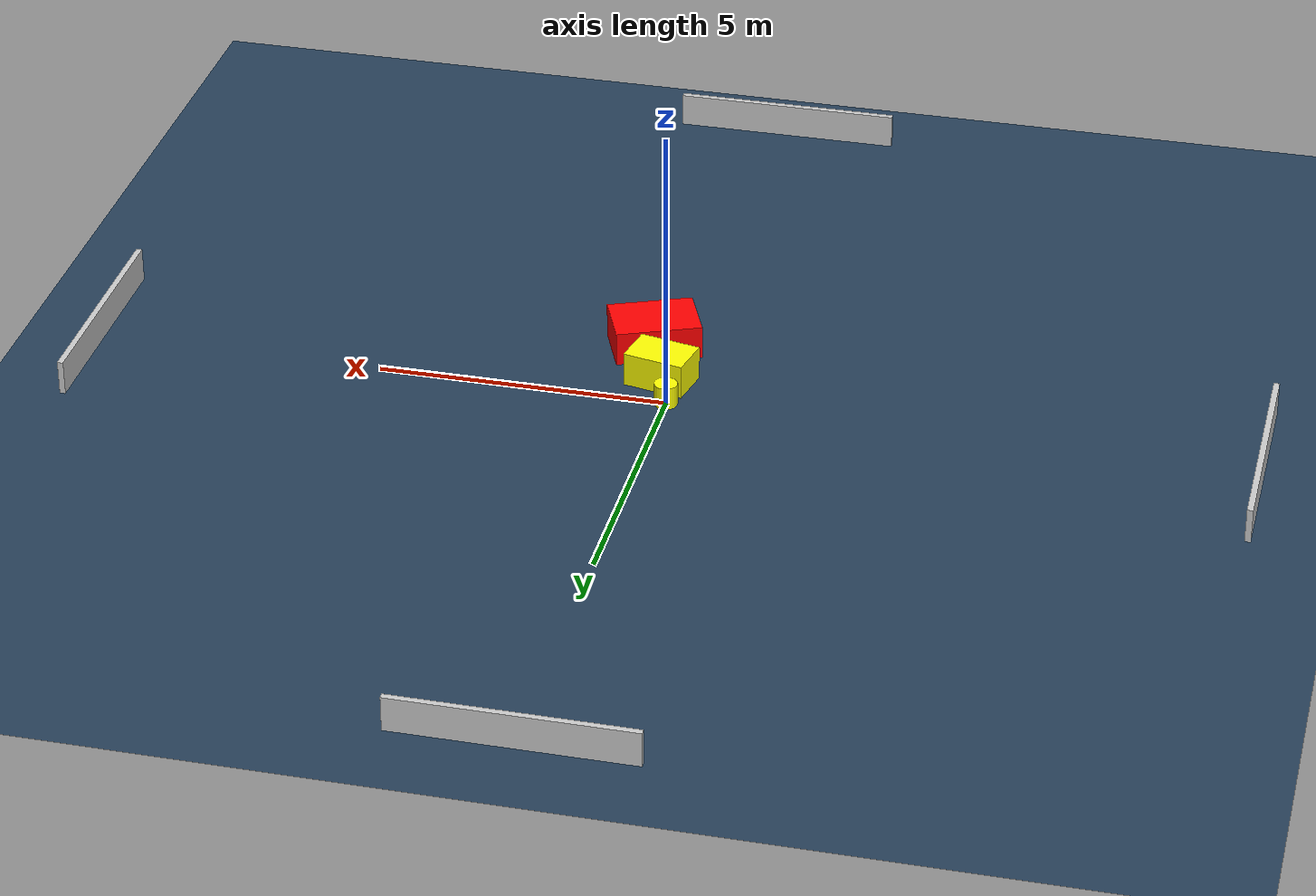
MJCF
<?xml version="1.0" ?>
<mujoco model="generated_environment">
  <option timestep="0.01" integrator="RK4" cone="elliptic"/>
  <default>
    <geom density="1"/>
  </default>
  <asset>
    <texture builtin="gradient" height="3072" name="skybox" rgb1="0.3 0.5 0.7" rgb2="0 0 0" type="skybox" width="512"/>
    <texture builtin="checker" height="300" name="groundplane" rgb1="0.2 0.3 0.4" rgb2="0.1 0.2 0.3" type="2d" width="300"/>
    <material name="groundplane" reflectance="0.2" texrepeat="5 5" texture="groundplane"/>
  </asset>
  <worldbody>
    <light dir="0 0 -1" directional="true" pos="0 0 1.5"/>
    <geom condim="3" friction="0.5 0.005 0.001" material="groundplane" name="floor" pos="0 0 0" size="0 0 0.05" type="plane"/>
    <body name="walls">
      <geom name="wall_1" condim="4" pos="-10.0 0.0 0.3" rgba="0.800000011920929 0.800000011920929 0.800000011920929 1.0" size="0.05 2.0 0.3" type="box"/>
      <geom name="wall_2" condim="4" pos="10.0 0.0 0.3" rgba="0.800000011920929 0.800000011920929 0.800000011920929 1.0" size="0.05 2.0 0.3" type="box"/>
      <geom name="wall_3" condim="4" pos="0.0 -10.0 0.3" rgba="0.800000011920929 0.800000011920929 0.800000011920929 1.0" size="2.0 0.05 0.3" type="box"/>
      <geom name="wall_4" condim="4" pos="0.0 10.0 0.3" rgba="0.800000011920929 0.800000011920929 0.800000011920929 1.0" size="2.0 0.05 0.3" type="box"/>
    </body>
    <body name="robot">
      <joint name="joint_x" type="slide" pos="0 0 0" axis="1 0 0"/>
      <joint name="joint_y" type="slide" pos="0 0 0" axis="0 1 0"/>
      <geom name="robot" type="cylinder" pos="0.0 0.0 0.2" size="0.2 0.2 0.0" mass="5.0" friction="1.0 0.005 0.0001" condim="4" rgba="1.0 1.0 0.0 1.0"/>
    </body>
    <body name="obstacle_1_movable">
      <geom name="obstacle_1_movable" condim="4" pos="0.2377523876497307 -0.6970500951789897 0.3" euler="0 0 78.19014914027849" friction="0.0 0.005 0.001" rgba="1.0 1.0 0.0 1.0" size="0.36914435705895415 0.5361590930054738 0.3" type="box" mass="0.1"/>
      <joint type="free"/>
    </body>
    <body name="obstacle_2_static">
      <geom name="obstacle_2_static" condim="4" pos="0.622398340973033 -1.8007258184458148 0.3" euler="0 0 292.4904140285278" friction="0.0 0.005 0.001" rgba="1.0 0.0 0.0 1.0" size="0.5194105680418484 0.7440440147723439 0.3" type="box"/>
    </body>
  </worldbody>
  <actuator>
    <motor name="actuator_x" joint="joint_x" gear="1" ctrlrange="-1 1"/>
    <motor name="actuator_y" joint="joint_y" gear="1" ctrlrange="-1 1"/>
  </actuator>
</mujoco>
